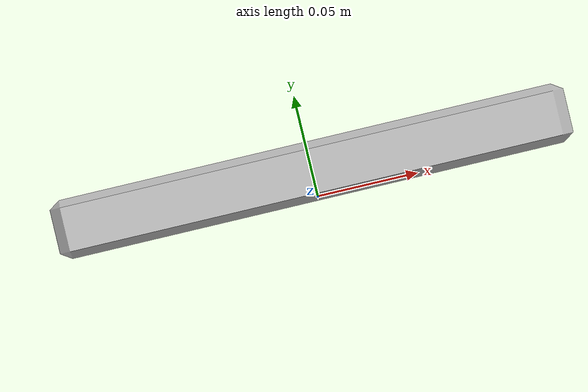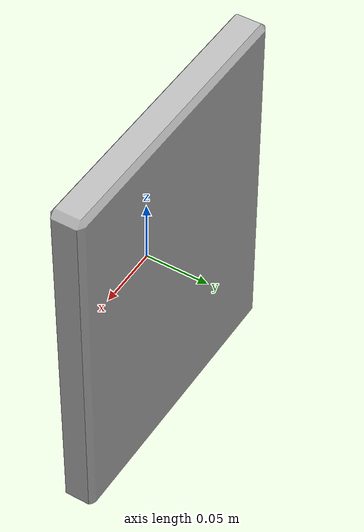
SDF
<?xml version="1.0" ?>
<sdf version="1.4">
  <model name="shelf1_box1_2">
    <link name="body">
      <pose>0 0 0 0 0 0</pose>
      <inertial>
        <pose>   0.000000   0.013000  -0.002500 0 0 0</pose>
        <mass>0.5</mass>
        <inertia>
          <ixx>0.01</ixx>
          <ixy>0</ixy>
          <ixz>0</ixz>
          <iyy>0.01</iyy>
          <iyz>0</iyz>
          <izz>0.01</izz>
        </inertia>
      </inertial>
      <collision name="collision">
        <geometry>
          <mesh>
            <uri>model://bookshelf/shelf1_items/box1_2/box1_2.dae</uri>
          </mesh>
        </geometry>
      </collision>
      <visual name="visual">
        <geometry>
          <mesh>
            <uri>model://bookshelf/shelf1_items/box1_2/box1_2.dae</uri>
          </mesh>
        </geometry>
      </visual>
    </link>
  </model>
</sdf>
